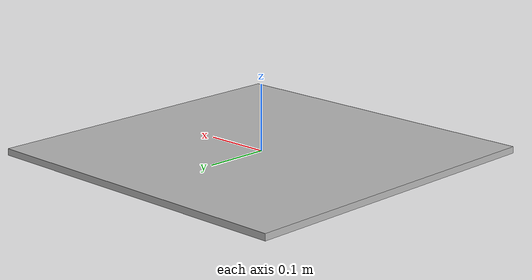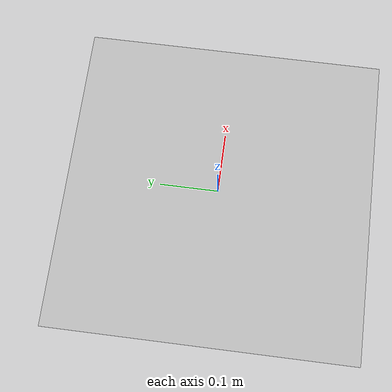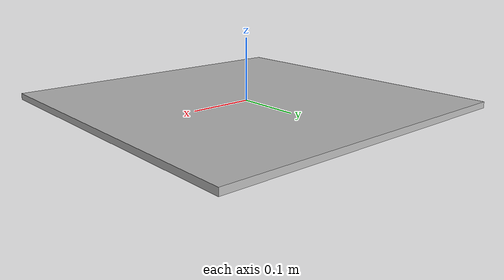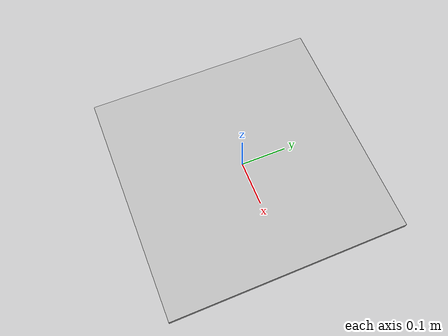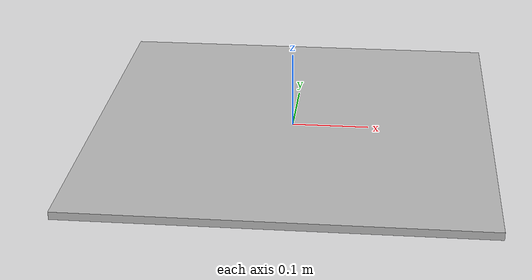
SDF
<?xml version="1.0" ?>
<sdf version="1.5">
  <model name="marker3">
    <link name="link">
      <gravity>0</gravity>

      <collision name="collision_marker3">
        <pose>0 0 -0.15 0 0 0</pose>
        <geometry>
          <box>
            <size>1.0 1.0 0.3</size>
          </box>
        </geometry>

        <surface>
         <friction>
          <ode>
           <mu>5.0</mu>   <!-- Coulomb friction coefficient for the first friction direction-->
           <mu2>5.0</mu2>
           <slip1>1.0</slip1>   <!-- Coulomb friction coefficient for the first friction direction-->
           <slip2>1.0</slip2>
          </ode>
         </friction>
        </surface>

      </collision>
      <visual name="visual_marker3">
        <pose>0 0 0.0 0 0 0</pose>
        <geometry>
          <box>
            <size>0.52 0.52 0.01</size>
          </box>
        </geometry>

        <material>
          <script>
            <uri>model://ar_helipad/materials/scripts</uri>
            <uri>model://ar_helipad/materials/textures</uri>
            <name>Marker3/Diffuse</name>
          </script>
        </material>
      </visual>
    </link>
  </model>
</sdf>
